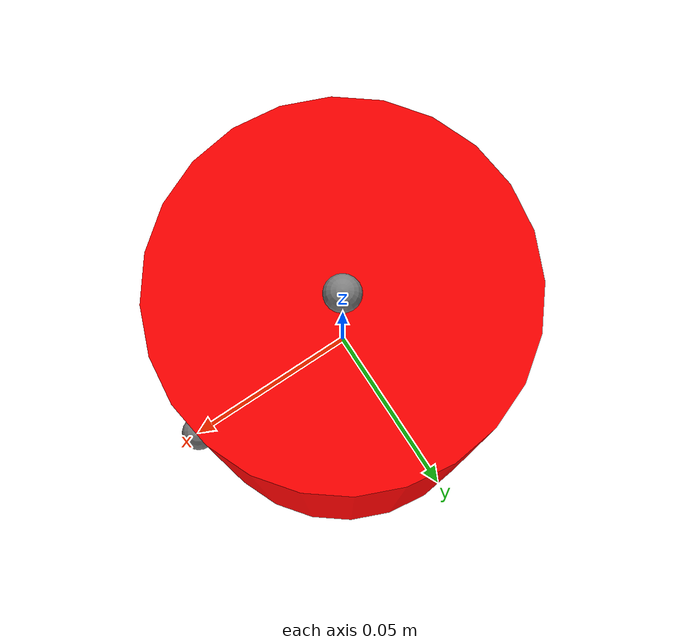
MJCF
<!-- sample of a general object defined in mujoco -->
<mujoco model="cylinder">
    <worldbody>
        <body>
            <!-- Size = Radius, Half-height -->
            <geom pos="0 0 0" size="0.05 0.08" type="cylinder" rgba="1 0 0 1"/>
            <!-- These sites are for stacking objects, for aligning objects on a table for example. -->
            <site pos="0 0 -0.08" name="bottom_site"/>
            <site pos="0 0 0.08" name="top_site"/>
            <site pos="0.05 0 0" name="horizontal_radius_site"/>
            <site pos="0 0 0" name="main_site"/>
        </body>
    </worldbody>
</mujoco>
